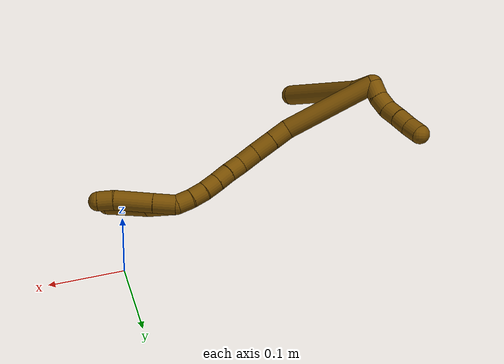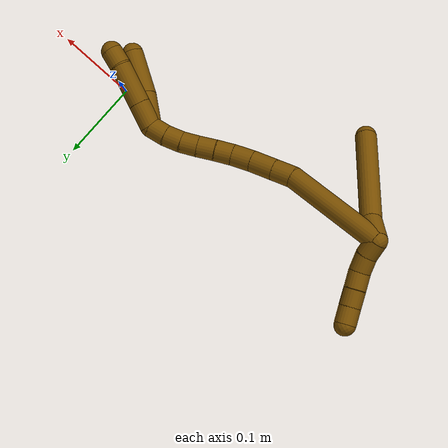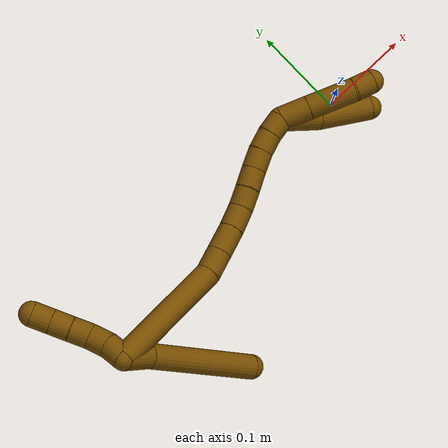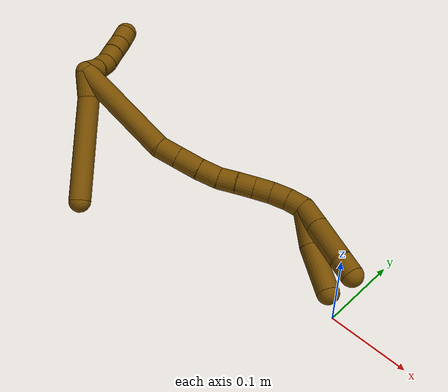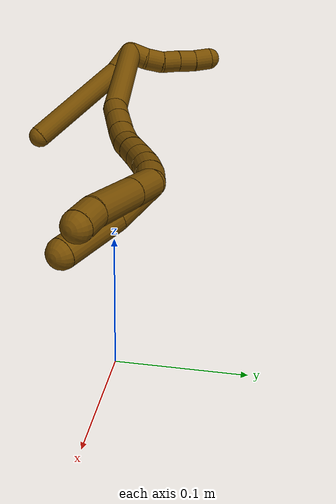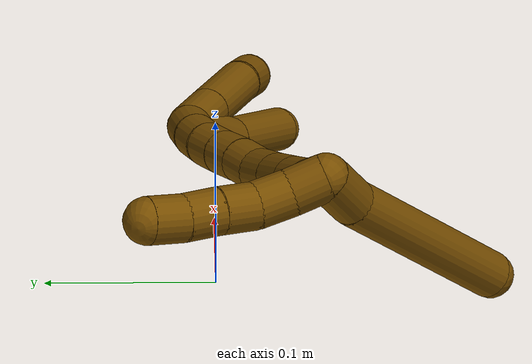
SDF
<sdf version="1.7">
 <world name="default">
  <model name="12">
   <static>0</static>
   <link name="12">
    <collision name="collision-cylinder-e_1_2_8">
     <pose>0.010122 -0.003648 0.010703 0.328545 0.730133 0.126542</pose>
     <geometry><cylinder><radius>0.0125</radius><length>0.030352</length></cylinder></geometry>
     <surface>
      <friction><ode><mu>1.16</mu><mu2>1.16</mu2><slip1>0</slip1><slip2>0</slip2></ode></friction>
      <contact><ode><kp>1e+06</kp><kd>1</kd><max_vel>0</max_vel><min_depth>0.001</min_depth></ode></contact>
     </surface>
    </collision>
    <visual name="visual-cylinder-e_1_2_8">
     <pose>0.010122 -0.003648 0.010703 0.328545 0.730133 0.126542</pose>
     <geometry><cylinder><radius>0.0125</radius><length>0.030352</length></cylinder></geometry>
     <material><ambient>0.466667 0.301961 0 1</ambient></material>
    </visual>
    <collision name="collision-cylinder-e_2_8_6">
     <pose>0.053071 -0.031819 0.064993 0.512455 0.580854 0.156285</pose>
     <geometry><cylinder><radius>0.0125</radius><length>0.119648</length></cylinder></geometry>
     <surface>
      <friction><ode><mu>1.16</mu><mu2>1.16</mu2><slip1>0</slip1><slip2>0</slip2></ode></friction>
      <contact><ode><kp>1e+06</kp><kd>1</kd><max_vel>0</max_vel><min_depth>0.001</min_depth></ode></contact>
     </surface>
    </collision>
    <visual name="visual-cylinder-e_2_8_6">
     <pose>0.053071 -0.031819 0.064993 0.512455 0.580854 0.156285</pose>
     <geometry><cylinder><radius>0.0125</radius><length>0.119648</length></cylinder></geometry>
     <material><ambient>0.466667 0.301961 0 1</ambient></material>
    </visual>
    <collision name="collision-cylinder-e_1_2_9">
     <pose>0.003789 0.008105 -0.004467 -2.07447 0.388557 -0.643065</pose>
     <geometry><cylinder><radius>0.0125</radius><length>0.02</length></cylinder></geometry>
     <surface>
      <friction><ode><mu>1.16</mu><mu2>1.16</mu2><slip1>0</slip1><slip2>0</slip2></ode></friction>
      <contact><ode><kp>1e+06</kp><kd>1</kd><max_vel>0</max_vel><min_depth>0.001</min_depth></ode></contact>
     </surface>
    </collision>
    <visual name="visual-cylinder-e_1_2_9">
     <pose>0.003789 0.008105 -0.004467 -2.07447 0.388557 -0.643065</pose>
     <geometry><cylinder><radius>0.0125</radius><length>0.02</length></cylinder></geometry>
     <material><ambient>0.466667 0.301961 0 1</ambient></material>
    </visual>
    <collision name="collision-cylinder-e_2_9_10">
     <pose>0.009918 0.023596 -0.015256 -2.2788 0.236284 -0.50472</pose>
     <geometry><cylinder><radius>0.0125</radius><length>0.02</length></cylinder></geometry>
     <surface>
      <friction><ode><mu>1.16</mu><mu2>1.16</mu2><slip1>0</slip1><slip2>0</slip2></ode></friction>
      <contact><ode><kp>1e+06</kp><kd>1</kd><max_vel>0</max_vel><min_depth>0.001</min_depth></ode></contact>
     </surface>
    </collision>
    <visual name="visual-cylinder-e_2_9_10">
     <pose>0.009918 0.023596 -0.015256 -2.2788 0.236284 -0.50472</pose>
     <geometry><cylinder><radius>0.0125</radius><length>0.02</length></cylinder></geometry>
     <material><ambient>0.466667 0.301961 0 1</ambient></material>
    </visual>
    <collision name="collision-cylinder-e_3_10_11">
     <pose>0.012 0.037879 -0.028815 -2.38021 -0.025881 0.064648</pose>
     <geometry><cylinder><radius>0.0125</radius><length>0.02</length></cylinder></geometry>
     <surface>
      <friction><ode><mu>1.16</mu><mu2>1.16</mu2><slip1>0</slip1><slip2>0</slip2></ode></friction>
      <contact><ode><kp>1e+06</kp><kd>1</kd><max_vel>0</max_vel><min_depth>0.001</min_depth></ode></contact>
     </surface>
    </collision>
    <visual name="visual-cylinder-e_3_10_11">
     <pose>0.012 0.037879 -0.028815 -2.38021 -0.025881 0.064648</pose>
     <geometry><cylinder><radius>0.0125</radius><length>0.02</length></cylinder></geometry>
     <material><ambient>0.466667 0.301961 0 1</ambient></material>
    </visual>
    <collision name="collision-cylinder-e_4_11_12">
     <pose>0.012054 0.051718 -0.043241 -2.37367 0.031258 -0.077336</pose>
     <geometry><cylinder><radius>0.0125</radius><length>0.02</length></cylinder></geometry>
     <surface>
      <friction><ode><mu>1.16</mu><mu2>1.16</mu2><slip1>0</slip1><slip2>0</slip2></ode></friction>
      <contact><ode><kp>1e+06</kp><kd>1</kd><max_vel>0</max_vel><min_depth>0.001</min_depth></ode></contact>
     </surface>
    </collision>
    <visual name="visual-cylinder-e_4_11_12">
     <pose>0.012054 0.051718 -0.043241 -2.37367 0.031258 -0.077336</pose>
     <geometry><cylinder><radius>0.0125</radius><length>0.02</length></cylinder></geometry>
     <material><ambient>0.466667 0.301961 0 1</ambient></material>
    </visual>
    <collision name="collision-cylinder-e_5_12_5">
     <pose>0.011469 0.065591 -0.057585 -2.37212 -0.089839 0.221116</pose>
     <geometry><cylinder><radius>0.0125</radius><length>0.02</length></cylinder></geometry>
     <surface>
      <friction><ode><mu>1.16</mu><mu2>1.16</mu2><slip1>0</slip1><slip2>0</slip2></ode></friction>
      <contact><ode><kp>1e+06</kp><kd>1</kd><max_vel>0</max_vel><min_depth>0.001</min_depth></ode></contact>
     </surface>
    </collision>
    <visual name="visual-cylinder-e_5_12_5">
     <pose>0.011469 0.065591 -0.057585 -2.37212 -0.089839 0.221116</pose>
     <geometry><cylinder><radius>0.0125</radius><length>0.02</length></cylinder></geometry>
     <material><ambient>0.466667 0.301961 0 1</ambient></material>
    </visual>
    <collision name="collision-cylinder-e_1_2_13">
     <pose>0.023124 0.021923 0.052316 -0.396825 0.387091 -0.078774</pose>
     <geometry><cylinder><radius>0.0125</radius><length>0.122512</length></cylinder></geometry>
     <surface>
      <friction><ode><mu>1.16</mu><mu2>1.16</mu2><slip1>0</slip1><slip2>0</slip2></ode></friction>
      <contact><ode><kp>1e+06</kp><kd>1</kd><max_vel>0</max_vel><min_depth>0.001</min_depth></ode></contact>
     </surface>
    </collision>
    <visual name="visual-cylinder-e_1_2_13">
     <pose>0.023124 0.021923 0.052316 -0.396825 0.387091 -0.078774</pose>
     <geometry><cylinder><radius>0.0125</radius><length>0.122512</length></cylinder></geometry>
     <material><ambient>0.466667 0.301961 0 1</ambient></material>
    </visual>
    <collision name="collision-cylinder-e_2_13_14">
     <pose>0.049701 0.051223 0.113612 -0.687692 0.288866 -0.104066</pose>
     <geometry><cylinder><radius>0.0125</radius><length>0.024248</length></cylinder></geometry>
     <surface>
      <friction><ode><mu>1.16</mu><mu2>1.16</mu2><slip1>0</slip1><slip2>0</slip2></ode></friction>
      <contact><ode><kp>1e+06</kp><kd>1</kd><max_vel>0</max_vel><min_depth>0.001</min_depth></ode></contact>
     </surface>
    </collision>
    <visual name="visual-cylinder-e_2_13_14">
     <pose>0.049701 0.051223 0.113612 -0.687692 0.288866 -0.104066</pose>
     <geometry><cylinder><radius>0.0125</radius><length>0.024248</length></cylinder></geometry>
     <material><ambient>0.466667 0.301961 0 1</ambient></material>
    </visual>
    <collision name="collision-cylinder-e_3_14_15">
     <pose>0.056985 0.067031 0.132846 -0.688122 0.280838 -0.101208</pose>
     <geometry><cylinder><radius>0.0125</radius><length>0.027633</length></cylinder></geometry>
     <surface>
      <friction><ode><mu>1.16</mu><mu2>1.16</mu2><slip1>0</slip1><slip2>0</slip2></ode></friction>
      <contact><ode><kp>1e+06</kp><kd>1</kd><max_vel>0</max_vel><min_depth>0.001</min_depth></ode></contact>
     </surface>
    </collision>
    <visual name="visual-cylinder-e_3_14_15">
     <pose>0.056985 0.067031 0.132846 -0.688122 0.280838 -0.101208</pose>
     <geometry><cylinder><radius>0.0125</radius><length>0.027633</length></cylinder></geometry>
     <material><ambient>0.466667 0.301961 0 1</ambient></material>
    </visual>
    <collision name="collision-cylinder-e_4_15_16">
     <pose>0.063602 0.083515 0.151758 -0.749218 0.231542 -0.091382</pose>
     <geometry><cylinder><radius>0.0125</radius><length>0.024297</length></cylinder></geometry>
     <surface>
      <friction><ode><mu>1.16</mu><mu2>1.16</mu2><slip1>0</slip1><slip2>0</slip2></ode></friction>
      <contact><ode><kp>1e+06</kp><kd>1</kd><max_vel>0</max_vel><min_depth>0.001</min_depth></ode></contact>
     </surface>
    </collision>
    <visual name="visual-cylinder-e_4_15_16">
     <pose>0.063602 0.083515 0.151758 -0.749218 0.231542 -0.091382</pose>
     <geometry><cylinder><radius>0.0125</radius><length>0.024297</length></cylinder></geometry>
     <material><ambient>0.466667 0.301961 0 1</ambient></material>
    </visual>
    <collision name="collision-cylinder-e_5_16_17">
     <pose>0.066909 0.099216 0.167442 -0.827791 0.049956 -0.021948</pose>
     <geometry><cylinder><radius>0.0125</radius><length>0.020797</length></cylinder></geometry>
     <surface>
      <friction><ode><mu>1.16</mu><mu2>1.16</mu2><slip1>0</slip1><slip2>0</slip2></ode></friction>
      <contact><ode><kp>1e+06</kp><kd>1</kd><max_vel>0</max_vel><min_depth>0.001</min_depth></ode></contact>
     </surface>
    </collision>
    <visual name="visual-cylinder-e_5_16_17">
     <pose>0.066909 0.099216 0.167442 -0.827791 0.049956 -0.021948</pose>
     <geometry><cylinder><radius>0.0125</radius><length>0.020797</length></cylinder></geometry>
     <material><ambient>0.466667 0.301961 0 1</ambient></material>
    </visual>
    <collision name="collision-cylinder-e_6_17_18">
     <pose>0.068557 0.114528 0.181155 -0.853335 0.11057 -0.050305</pose>
     <geometry><cylinder><radius>0.0125</radius><length>0.020465</length></cylinder></geometry>
     <surface>
      <friction><ode><mu>1.16</mu><mu2>1.16</mu2><slip1>0</slip1><slip2>0</slip2></ode></friction>
      <contact><ode><kp>1e+06</kp><kd>1</kd><max_vel>0</max_vel><min_depth>0.001</min_depth></ode></contact>
     </surface>
    </collision>
    <visual name="visual-cylinder-e_6_17_18">
     <pose>0.068557 0.114528 0.181155 -0.853335 0.11057 -0.050305</pose>
     <geometry><cylinder><radius>0.0125</radius><length>0.020465</length></cylinder></geometry>
     <material><ambient>0.466667 0.301961 0 1</ambient></material>
    </visual>
    <collision name="collision-cylinder-e_7_18_19">
     <pose>0.070643 0.129468 0.194666 -0.817483 0.095564 -0.041418</pose>
     <geometry><cylinder><radius>0.0125</radius><length>0.020047</length></cylinder></geometry>
     <surface>
      <friction><ode><mu>1.16</mu><mu2>1.16</mu2><slip1>0</slip1><slip2>0</slip2></ode></friction>
      <contact><ode><kp>1e+06</kp><kd>1</kd><max_vel>0</max_vel><min_depth>0.001</min_depth></ode></contact>
     </surface>
    </collision>
    <visual name="visual-cylinder-e_7_18_19">
     <pose>0.070643 0.129468 0.194666 -0.817483 0.095564 -0.041418</pose>
     <geometry><cylinder><radius>0.0125</radius><length>0.020047</length></cylinder></geometry>
     <material><ambient>0.466667 0.301961 0 1</ambient></material>
    </visual>
    <collision name="collision-cylinder-e_8_19_20">
     <pose>0.072526 0.143059 0.209192 -0.686719 0.092779 -0.033191</pose>
     <geometry><cylinder><radius>0.0125</radius><length>0.020001</length></cylinder></geometry>
     <surface>
      <friction><ode><mu>1.16</mu><mu2>1.16</mu2><slip1>0</slip1><slip2>0</slip2></ode></friction>
      <contact><ode><kp>1e+06</kp><kd>1</kd><max_vel>0</max_vel><min_depth>0.001</min_depth></ode></contact>
     </surface>
    </collision>
    <visual name="visual-cylinder-e_8_19_20">
     <pose>0.072526 0.143059 0.209192 -0.686719 0.092779 -0.033191</pose>
     <geometry><cylinder><radius>0.0125</radius><length>0.020001</length></cylinder></geometry>
     <material><ambient>0.466667 0.301961 0 1</ambient></material>
    </visual>
    <collision name="collision-cylinder-e_9_20_1">
     <pose>0.0744 0.154475 0.225441 -0.538158 0.094904 -0.02619</pose>
     <geometry><cylinder><radius>0.0125</radius><length>0.020001</length></cylinder></geometry>
     <surface>
      <friction><ode><mu>1.16</mu><mu2>1.16</mu2><slip1>0</slip1><slip2>0</slip2></ode></friction>
      <contact><ode><kp>1e+06</kp><kd>1</kd><max_vel>0</max_vel><min_depth>0.001</min_depth></ode></contact>
     </surface>
    </collision>
    <visual name="visual-cylinder-e_9_20_1">
     <pose>0.0744 0.154475 0.225441 -0.538158 0.094904 -0.02619</pose>
     <geometry><cylinder><radius>0.0125</radius><length>0.020001</length></cylinder></geometry>
     <material><ambient>0.466667 0.301961 0 1</ambient></material>
    </visual>
    <collision name="collision-cylinder-e_1_1_21">
     <pose>0.075357 0.159373 0.248786 0.013835 0.000679 5e-06</pose>
     <geometry><cylinder><radius>0.0125</radius><length>0.029596</length></cylinder></geometry>
     <surface>
      <friction><ode><mu>1.16</mu><mu2>1.16</mu2><slip1>0</slip1><slip2>0</slip2></ode></friction>
      <contact><ode><kp>1e+06</kp><kd>1</kd><max_vel>0</max_vel><min_depth>0.001</min_depth></ode></contact>
     </surface>
    </collision>
    <visual name="visual-cylinder-e_1_1_21">
     <pose>0.075357 0.159373 0.248786 0.013835 0.000679 5e-06</pose>
     <geometry><cylinder><radius>0.0125</radius><length>0.029596</length></cylinder></geometry>
     <material><ambient>0.466667 0.301961 0 1</ambient></material>
    </visual>
    <collision name="collision-cylinder-e_2_21_22">
     <pose>0.075375 0.158631 0.28848 0.02158 0.000289 3e-06</pose>
     <geometry><cylinder><radius>0.0125</radius><length>0.049806</length></cylinder></geometry>
     <surface>
      <friction><ode><mu>1.16</mu><mu2>1.16</mu2><slip1>0</slip1><slip2>0</slip2></ode></friction>
      <contact><ode><kp>1e+06</kp><kd>1</kd><max_vel>0</max_vel><min_depth>0.001</min_depth></ode></contact>
     </surface>
    </collision>
    <visual name="visual-cylinder-e_2_21_22">
     <pose>0.075375 0.158631 0.28848 0.02158 0.000289 3e-06</pose>
     <geometry><cylinder><radius>0.0125</radius><length>0.049806</length></cylinder></geometry>
     <material><ambient>0.466667 0.301961 0 1</ambient></material>
    </visual>
    <collision name="collision-cylinder-e_3_22_4">
     <pose>0.076963 0.158705 0.323535 -0.060062 0.154121 -0.004639</pose>
     <geometry><cylinder><radius>0.0125</radius><length>0.020598</length></cylinder></geometry>
     <surface>
      <friction><ode><mu>1.16</mu><mu2>1.16</mu2><slip1>0</slip1><slip2>0</slip2></ode></friction>
      <contact><ode><kp>1e+06</kp><kd>1</kd><max_vel>0</max_vel><min_depth>0.001</min_depth></ode></contact>
     </surface>
    </collision>
    <visual name="visual-cylinder-e_3_22_4">
     <pose>0.076963 0.158705 0.323535 -0.060062 0.154121 -0.004639</pose>
     <geometry><cylinder><radius>0.0125</radius><length>0.020598</length></cylinder></geometry>
     <material><ambient>0.466667 0.301961 0 1</ambient></material>
    </visual>
    <collision name="collision-cylinder-e_1_1_23">
     <pose>0.084983 0.15398 0.252745 0.290042 0.457464 0.067975</pose>
     <geometry><cylinder><radius>0.0125</radius><length>0.043632</length></cylinder></geometry>
     <surface>
      <friction><ode><mu>1.16</mu><mu2>1.16</mu2><slip1>0</slip1><slip2>0</slip2></ode></friction>
      <contact><ode><kp>1e+06</kp><kd>1</kd><max_vel>0</max_vel><min_depth>0.001</min_depth></ode></contact>
     </surface>
    </collision>
    <visual name="visual-cylinder-e_1_1_23">
     <pose>0.084983 0.15398 0.252745 0.290042 0.457464 0.067975</pose>
     <geometry><cylinder><radius>0.0125</radius><length>0.043632</length></cylinder></geometry>
     <material><ambient>0.466667 0.301961 0 1</ambient></material>
    </visual>
    <collision name="collision-cylinder-e_2_23_3">
     <pose>0.100317 0.143521 0.29867 0.177041 0.203593 0.018132</pose>
     <geometry><cylinder><radius>0.0125</radius><length>0.056368</length></cylinder></geometry>
     <surface>
      <friction><ode><mu>1.16</mu><mu2>1.16</mu2><slip1>0</slip1><slip2>0</slip2></ode></friction>
      <contact><ode><kp>1e+06</kp><kd>1</kd><max_vel>0</max_vel><min_depth>0.001</min_depth></ode></contact>
     </surface>
    </collision>
    <visual name="visual-cylinder-e_2_23_3">
     <pose>0.100317 0.143521 0.29867 0.177041 0.203593 0.018132</pose>
     <geometry><cylinder><radius>0.0125</radius><length>0.056368</length></cylinder></geometry>
     <material><ambient>0.466667 0.301961 0 1</ambient></material>
    </visual>
    <collision name="collision-sphere-3">
     <pose>0.106016 0.13866 0.325841 0 -0 0</pose>
     <geometry><sphere><radius>0.0125</radius></sphere></geometry>
     <surface>
      <friction><ode><mu>1.16</mu><mu2>1.16</mu2><slip1>0</slip1><slip2>0</slip2></ode></friction>
      <contact><ode><kp>1e+06</kp><kd>1</kd><max_vel>0</max_vel><min_depth>0.001</min_depth></ode></contact>
     </surface>
    </collision>
    <visual name="visual-sphere-3">
     <pose>0.106016 0.13866 0.325841 0 -0 0</pose>
     <geometry><sphere><radius>0.0125</radius></sphere></geometry>
     <material><ambient>0.466667 0.301961 0 1</ambient></material>
    </visual>
    <collision name="collision-sphere-23">
     <pose>0.094619 0.148383 0.2715 0 -0 0</pose>
     <geometry><sphere><radius>0.0125</radius></sphere></geometry>
     <surface>
      <friction><ode><mu>1.16</mu><mu2>1.16</mu2><slip1>0</slip1><slip2>0</slip2></ode></friction>
      <contact><ode><kp>1e+06</kp><kd>1</kd><max_vel>0</max_vel><min_depth>0.001</min_depth></ode></contact>
     </surface>
    </collision>
    <visual name="visual-sphere-23">
     <pose>0.094619 0.148383 0.2715 0 -0 0</pose>
     <geometry><sphere><radius>0.0125</radius></sphere></geometry>
     <material><ambient>0.466667 0.301961 0 1</ambient></material>
    </visual>
    <collision name="collision-sphere-4">
     <pose>0.078544 0.159316 0.333694 0 -0 0</pose>
     <geometry><sphere><radius>0.0125</radius></sphere></geometry>
     <surface>
      <friction><ode><mu>1.16</mu><mu2>1.16</mu2><slip1>0</slip1><slip2>0</slip2></ode></friction>
      <contact><ode><kp>1e+06</kp><kd>1</kd><max_vel>0</max_vel><min_depth>0.001</min_depth></ode></contact>
     </surface>
    </collision>
    <visual name="visual-sphere-4">
     <pose>0.078544 0.159316 0.333694 0 -0 0</pose>
     <geometry><sphere><radius>0.0125</radius></sphere></geometry>
     <material><ambient>0.466667 0.301961 0 1</ambient></material>
    </visual>
    <collision name="collision-sphere-22">
     <pose>0.075382 0.158094 0.313376 0 -0 0</pose>
     <geometry><sphere><radius>0.0125</radius></sphere></geometry>
     <surface>
      <friction><ode><mu>1.16</mu><mu2>1.16</mu2><slip1>0</slip1><slip2>0</slip2></ode></friction>
      <contact><ode><kp>1e+06</kp><kd>1</kd><max_vel>0</max_vel><min_depth>0.001</min_depth></ode></contact>
     </surface>
    </collision>
    <visual name="visual-sphere-22">
     <pose>0.075382 0.158094 0.313376 0 -0 0</pose>
     <geometry><sphere><radius>0.0125</radius></sphere></geometry>
     <material><ambient>0.466667 0.301961 0 1</ambient></material>
    </visual>
    <collision name="collision-sphere-21">
     <pose>0.075367 0.159169 0.263583 0 -0 0</pose>
     <geometry><sphere><radius>0.0125</radius></sphere></geometry>
     <surface>
      <friction><ode><mu>1.16</mu><mu2>1.16</mu2><slip1>0</slip1><slip2>0</slip2></ode></friction>
      <contact><ode><kp>1e+06</kp><kd>1</kd><max_vel>0</max_vel><min_depth>0.001</min_depth></ode></contact>
     </surface>
    </collision>
    <visual name="visual-sphere-21">
     <pose>0.075367 0.159169 0.263583 0 -0 0</pose>
     <geometry><sphere><radius>0.0125</radius></sphere></geometry>
     <material><ambient>0.466667 0.301961 0 1</ambient></material>
    </visual>
    <collision name="collision-sphere-1">
     <pose>0.075347 0.159578 0.233989 0 -0 0</pose>
     <geometry><sphere><radius>0.0125</radius></sphere></geometry>
     <surface>
      <friction><ode><mu>1.16</mu><mu2>1.16</mu2><slip1>0</slip1><slip2>0</slip2></ode></friction>
      <contact><ode><kp>1e+06</kp><kd>1</kd><max_vel>0</max_vel><min_depth>0.001</min_depth></ode></contact>
     </surface>
    </collision>
    <visual name="visual-sphere-1">
     <pose>0.075347 0.159578 0.233989 0 -0 0</pose>
     <geometry><sphere><radius>0.0125</radius></sphere></geometry>
     <material><ambient>0.466667 0.301961 0 1</ambient></material>
    </visual>
    <collision name="collision-sphere-11">
     <pose>0.011741 0.044775 -0.036051 0 -0 0</pose>
     <geometry><sphere><radius>0.0125</radius></sphere></geometry>
     <surface>
      <friction><ode><mu>1.16</mu><mu2>1.16</mu2><slip1>0</slip1><slip2>0</slip2></ode></friction>
      <contact><ode><kp>1e+06</kp><kd>1</kd><max_vel>0</max_vel><min_depth>0.001</min_depth></ode></contact>
     </surface>
    </collision>
    <visual name="visual-sphere-11">
     <pose>0.011741 0.044775 -0.036051 0 -0 0</pose>
     <geometry><sphere><radius>0.0125</radius></sphere></geometry>
     <material><ambient>0.466667 0.301961 0 1</ambient></material>
    </visual>
    <collision name="collision-sphere-10">
     <pose>0.012259 0.030982 -0.021578 0 -0 0</pose>
     <geometry><sphere><radius>0.0125</radius></sphere></geometry>
     <surface>
      <friction><ode><mu>1.16</mu><mu2>1.16</mu2><slip1>0</slip1><slip2>0</slip2></ode></friction>
      <contact><ode><kp>1e+06</kp><kd>1</kd><max_vel>0</max_vel><min_depth>0.001</min_depth></ode></contact>
     </surface>
    </collision>
    <visual name="visual-sphere-10">
     <pose>0.012259 0.030982 -0.021578 0 -0 0</pose>
     <geometry><sphere><radius>0.0125</radius></sphere></geometry>
     <material><ambient>0.466667 0.301961 0 1</ambient></material>
    </visual>
    <collision name="collision-sphere-6">
     <pose>0.085899 -0.056341 0.108581 0 -0 0</pose>
     <geometry><sphere><radius>0.0125</radius></sphere></geometry>
     <surface>
      <friction><ode><mu>1.16</mu><mu2>1.16</mu2><slip1>0</slip1><slip2>0</slip2></ode></friction>
      <contact><ode><kp>1e+06</kp><kd>1</kd><max_vel>0</max_vel><min_depth>0.001</min_depth></ode></contact>
     </surface>
    </collision>
    <visual name="visual-sphere-6">
     <pose>0.085899 -0.056341 0.108581 0 -0 0</pose>
     <geometry><sphere><radius>0.0125</radius></sphere></geometry>
     <material><ambient>0.466667 0.301961 0 1</ambient></material>
    </visual>
    <collision name="collision-sphere-9">
     <pose>0.007577 0.016211 -0.008933 0 -0 0</pose>
     <geometry><sphere><radius>0.0125</radius></sphere></geometry>
     <surface>
      <friction><ode><mu>1.16</mu><mu2>1.16</mu2><slip1>0</slip1><slip2>0</slip2></ode></friction>
      <contact><ode><kp>1e+06</kp><kd>1</kd><max_vel>0</max_vel><min_depth>0.001</min_depth></ode></contact>
     </surface>
    </collision>
    <visual name="visual-sphere-9">
     <pose>0.007577 0.016211 -0.008933 0 -0 0</pose>
     <geometry><sphere><radius>0.0125</radius></sphere></geometry>
     <material><ambient>0.466667 0.301961 0 1</ambient></material>
    </visual>
    <collision name="collision-sphere-2">
     <geometry><sphere><radius>0.0125</radius></sphere></geometry>
     <surface>
      <friction><ode><mu>1.16</mu><mu2>1.16</mu2><slip1>0</slip1><slip2>0</slip2></ode></friction>
      <contact><ode><kp>1e+06</kp><kd>1</kd><max_vel>0</max_vel><min_depth>0.001</min_depth></ode></contact>
     </surface>
    </collision>
    <visual name="visual-sphere-2">
     <geometry><sphere><radius>0.0125</radius></sphere></geometry>
     <material><ambient>0.466667 0.301961 0 1</ambient></material>
    </visual>
    <collision name="collision-sphere-19">
     <pose>0.071599 0.136746 0.201492 0 -0 0</pose>
     <geometry><sphere><radius>0.0125</radius></sphere></geometry>
     <surface>
      <friction><ode><mu>1.16</mu><mu2>1.16</mu2><slip1>0</slip1><slip2>0</slip2></ode></friction>
      <contact><ode><kp>1e+06</kp><kd>1</kd><max_vel>0</max_vel><min_depth>0.001</min_depth></ode></contact>
     </surface>
    </collision>
    <visual name="visual-sphere-19">
     <pose>0.071599 0.136746 0.201492 0 -0 0</pose>
     <geometry><sphere><radius>0.0125</radius></sphere></geometry>
     <material><ambient>0.466667 0.301961 0 1</ambient></material>
    </visual>
    <collision name="collision-sphere-8">
     <pose>0.020244 -0.007297 0.021405 0 -0 0</pose>
     <geometry><sphere><radius>0.0125</radius></sphere></geometry>
     <surface>
      <friction><ode><mu>1.16</mu><mu2>1.16</mu2><slip1>0</slip1><slip2>0</slip2></ode></friction>
      <contact><ode><kp>1e+06</kp><kd>1</kd><max_vel>0</max_vel><min_depth>0.001</min_depth></ode></contact>
     </surface>
    </collision>
    <visual name="visual-sphere-8">
     <pose>0.020244 -0.007297 0.021405 0 -0 0</pose>
     <geometry><sphere><radius>0.0125</radius></sphere></geometry>
     <material><ambient>0.466667 0.301961 0 1</ambient></material>
    </visual>
    <collision name="collision-sphere-12">
     <pose>0.012366 0.058662 -0.050431 0 -0 0</pose>
     <geometry><sphere><radius>0.0125</radius></sphere></geometry>
     <surface>
      <friction><ode><mu>1.16</mu><mu2>1.16</mu2><slip1>0</slip1><slip2>0</slip2></ode></friction>
      <contact><ode><kp>1e+06</kp><kd>1</kd><max_vel>0</max_vel><min_depth>0.001</min_depth></ode></contact>
     </surface>
    </collision>
    <visual name="visual-sphere-12">
     <pose>0.012366 0.058662 -0.050431 0 -0 0</pose>
     <geometry><sphere><radius>0.0125</radius></sphere></geometry>
     <material><ambient>0.466667 0.301961 0 1</ambient></material>
    </visual>
    <collision name="collision-sphere-5">
     <pose>0.010572 0.072521 -0.064739 0 -0 0</pose>
     <geometry><sphere><radius>0.0125</radius></sphere></geometry>
     <surface>
      <friction><ode><mu>1.16</mu><mu2>1.16</mu2><slip1>0</slip1><slip2>0</slip2></ode></friction>
      <contact><ode><kp>1e+06</kp><kd>1</kd><max_vel>0</max_vel><min_depth>0.001</min_depth></ode></contact>
     </surface>
    </collision>
    <visual name="visual-sphere-5">
     <pose>0.010572 0.072521 -0.064739 0 -0 0</pose>
     <geometry><sphere><radius>0.0125</radius></sphere></geometry>
     <material><ambient>0.466667 0.301961 0 1</ambient></material>
    </visual>
    <collision name="collision-sphere-13">
     <pose>0.046248 0.043847 0.104632 0 -0 0</pose>
     <geometry><sphere><radius>0.0125</radius></sphere></geometry>
     <surface>
      <friction><ode><mu>1.16</mu><mu2>1.16</mu2><slip1>0</slip1><slip2>0</slip2></ode></friction>
      <contact><ode><kp>1e+06</kp><kd>1</kd><max_vel>0</max_vel><min_depth>0.001</min_depth></ode></contact>
     </surface>
    </collision>
    <visual name="visual-sphere-13">
     <pose>0.046248 0.043847 0.104632 0 -0 0</pose>
     <geometry><sphere><radius>0.0125</radius></sphere></geometry>
     <material><ambient>0.466667 0.301961 0 1</ambient></material>
    </visual>
    <collision name="collision-sphere-14">
     <pose>0.053155 0.0586 0.122592 0 -0 0</pose>
     <geometry><sphere><radius>0.0125</radius></sphere></geometry>
     <surface>
      <friction><ode><mu>1.16</mu><mu2>1.16</mu2><slip1>0</slip1><slip2>0</slip2></ode></friction>
      <contact><ode><kp>1e+06</kp><kd>1</kd><max_vel>0</max_vel><min_depth>0.001</min_depth></ode></contact>
     </surface>
    </collision>
    <visual name="visual-sphere-14">
     <pose>0.053155 0.0586 0.122592 0 -0 0</pose>
     <geometry><sphere><radius>0.0125</radius></sphere></geometry>
     <material><ambient>0.466667 0.301961 0 1</ambient></material>
    </visual>
    <collision name="collision-sphere-15">
     <pose>0.060814 0.075462 0.143101 0 -0 0</pose>
     <geometry><sphere><radius>0.0125</radius></sphere></geometry>
     <surface>
      <friction><ode><mu>1.16</mu><mu2>1.16</mu2><slip1>0</slip1><slip2>0</slip2></ode></friction>
      <contact><ode><kp>1e+06</kp><kd>1</kd><max_vel>0</max_vel><min_depth>0.001</min_depth></ode></contact>
     </surface>
    </collision>
    <visual name="visual-sphere-15">
     <pose>0.060814 0.075462 0.143101 0 -0 0</pose>
     <geometry><sphere><radius>0.0125</radius></sphere></geometry>
     <material><ambient>0.466667 0.301961 0 1</ambient></material>
    </visual>
    <collision name="collision-sphere-16">
     <pose>0.066389 0.091568 0.160416 0 -0 0</pose>
     <geometry><sphere><radius>0.0125</radius></sphere></geometry>
     <surface>
      <friction><ode><mu>1.16</mu><mu2>1.16</mu2><slip1>0</slip1><slip2>0</slip2></ode></friction>
      <contact><ode><kp>1e+06</kp><kd>1</kd><max_vel>0</max_vel><min_depth>0.001</min_depth></ode></contact>
     </surface>
    </collision>
    <visual name="visual-sphere-16">
     <pose>0.066389 0.091568 0.160416 0 -0 0</pose>
     <geometry><sphere><radius>0.0125</radius></sphere></geometry>
     <material><ambient>0.466667 0.301961 0 1</ambient></material>
    </visual>
    <collision name="collision-sphere-17">
     <pose>0.067428 0.106865 0.174468 0 -0 0</pose>
     <geometry><sphere><radius>0.0125</radius></sphere></geometry>
     <surface>
      <friction><ode><mu>1.16</mu><mu2>1.16</mu2><slip1>0</slip1><slip2>0</slip2></ode></friction>
      <contact><ode><kp>1e+06</kp><kd>1</kd><max_vel>0</max_vel><min_depth>0.001</min_depth></ode></contact>
     </surface>
    </collision>
    <visual name="visual-sphere-17">
     <pose>0.067428 0.106865 0.174468 0 -0 0</pose>
     <geometry><sphere><radius>0.0125</radius></sphere></geometry>
     <material><ambient>0.466667 0.301961 0 1</ambient></material>
    </visual>
    <collision name="collision-sphere-18">
     <pose>0.069686 0.12219 0.187841 0 -0 0</pose>
     <geometry><sphere><radius>0.0125</radius></sphere></geometry>
     <surface>
      <friction><ode><mu>1.16</mu><mu2>1.16</mu2><slip1>0</slip1><slip2>0</slip2></ode></friction>
      <contact><ode><kp>1e+06</kp><kd>1</kd><max_vel>0</max_vel><min_depth>0.001</min_depth></ode></contact>
     </surface>
    </collision>
    <visual name="visual-sphere-18">
     <pose>0.069686 0.12219 0.187841 0 -0 0</pose>
     <geometry><sphere><radius>0.0125</radius></sphere></geometry>
     <material><ambient>0.466667 0.301961 0 1</ambient></material>
    </visual>
    <collision name="collision-sphere-20">
     <pose>0.073452 0.149373 0.216893 0 -0 0</pose>
     <geometry><sphere><radius>0.0125</radius></sphere></geometry>
     <surface>
      <friction><ode><mu>1.16</mu><mu2>1.16</mu2><slip1>0</slip1><slip2>0</slip2></ode></friction>
      <contact><ode><kp>1e+06</kp><kd>1</kd><max_vel>0</max_vel><min_depth>0.001</min_depth></ode></contact>
     </surface>
    </collision>
    <visual name="visual-sphere-20">
     <pose>0.073452 0.149373 0.216893 0 -0 0</pose>
     <geometry><sphere><radius>0.0125</radius></sphere></geometry>
     <material><ambient>0.466667 0.301961 0 1</ambient></material>
    </visual>
    <inertial>
     <pose>0.051842 0.068371 0.13024 0 -0 0</pose>
     <mass>0.75</mass>
     <inertia>
      <ixx>0.000355</ixx>
      <ixy>0</ixy>
      <ixz>0</ixz>
      <iyy>0.000352</iyy>
      <iyz>0</iyz>
      <izz>-0.000122</izz>
     </inertia>
    </inertial>
   </link>
   <pose>-0.340634 -0.053278 0.202104 2.73643 1.55123 2.37872</pose>
  </model>
 </world>
</sdf>
